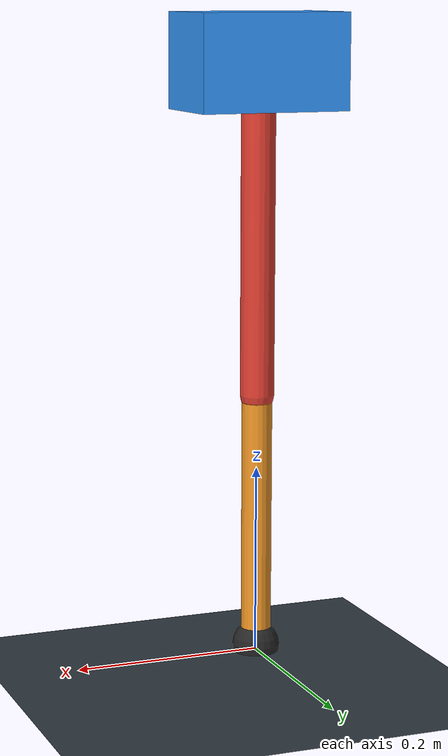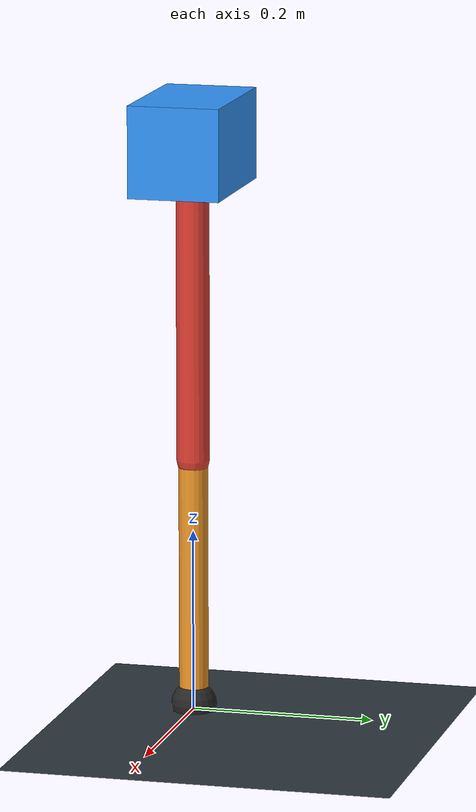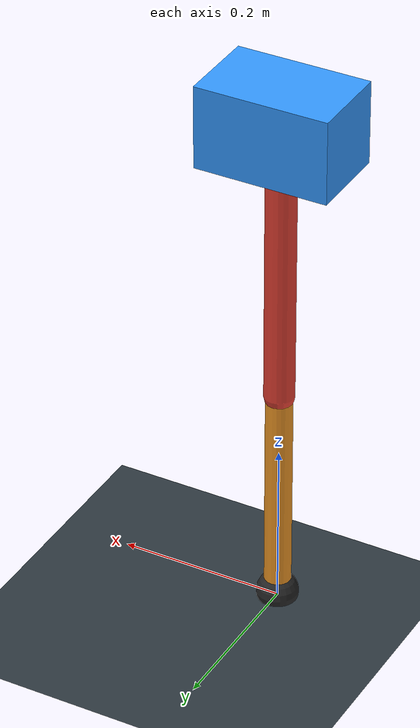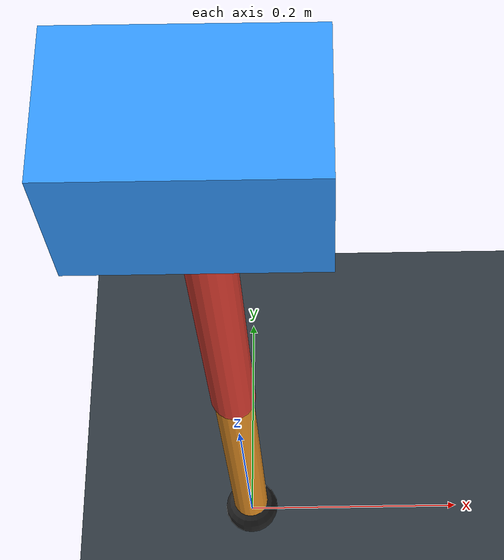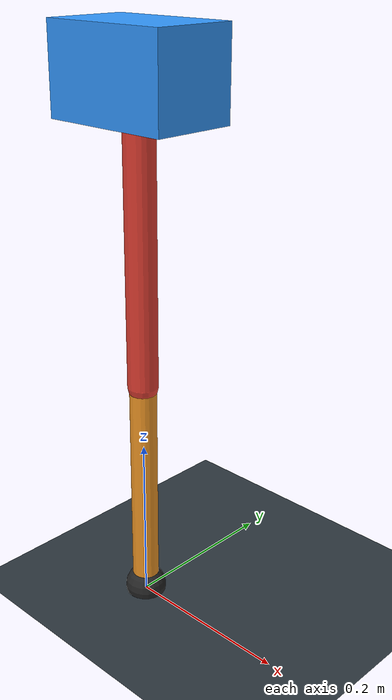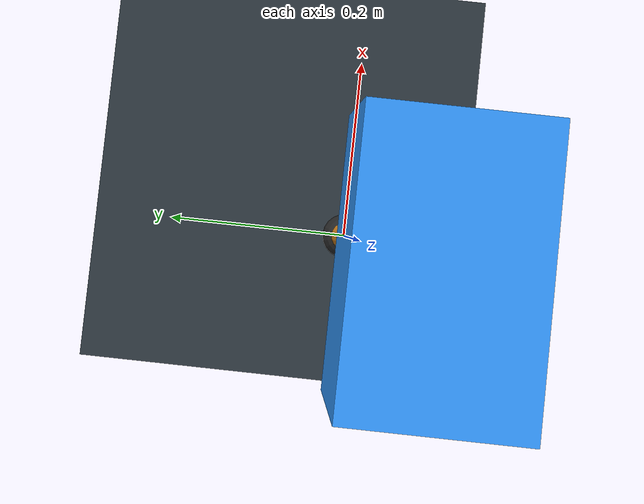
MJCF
<mujoco model="single_axis_two_bar">
  <compiler angle="radian" inertiafromgeom="true"/>
  <option timestep="0.001" integrator="implicitfast" gravity="0 0 -9.81"/>
  <default>
    <joint damping="0.08"/>
    <geom friction="1.2 0.01 0.0001" condim="3"/>
  </default>
  <worldbody>
    <geom name="floor" type="plane" size="5 5 0.1" rgba="0.18 0.22 0.25 1"/>
    <body name="carriage" pos="0 0 0.6283509966551298">
      <joint name="pole_slide" type="slide" axis="0 0 1"/>
      <geom name="payload" type="box" size="0.08 0.05 0.05" mass="2.5770007315434986" rgba="0.2 0.6 1 1"/>
      <body name="thigh" pos="0 0 0">
        <joint name="hip" type="hinge" axis="0 1 0"/>
        <geom name="thigh_link" type="capsule" fromto="0 0 0 0 0 -0.34915405173856406" size="0.018" mass="0.2487768755274646" rgba="0.9 0.25 0.2 1"/>
        <body name="shank" pos="0 0 -0.34915405173856406">
          <joint name="knee" type="hinge" axis="0 1 0"/>
          <geom name="shank_link" type="capsule" fromto="0 0 0 0 0 -0.27285728501930173" size="0.016" mass="0.19441442106716747" rgba="0.95 0.6 0.15 1"/>
          <geom name="foot" type="sphere" pos="0 0 -0.27285728501930173" size="0.025" mass="0.03" rgba="0.15 0.15 0.15 1"/>
          <site name="toe" pos="0 0 -0.27285728501930173" size="0.008"/>
        </body>
      </body>
    </body>
  </worldbody>
  <actuator>
    <motor name="hip_motor" joint="hip" ctrlrange="-42.720422809333236 42.720422809333236"/>
    <motor name="knee_motor" joint="knee" ctrlrange="-79.62752638853058 79.62752638853058"/>
  </actuator>
</mujoco>
